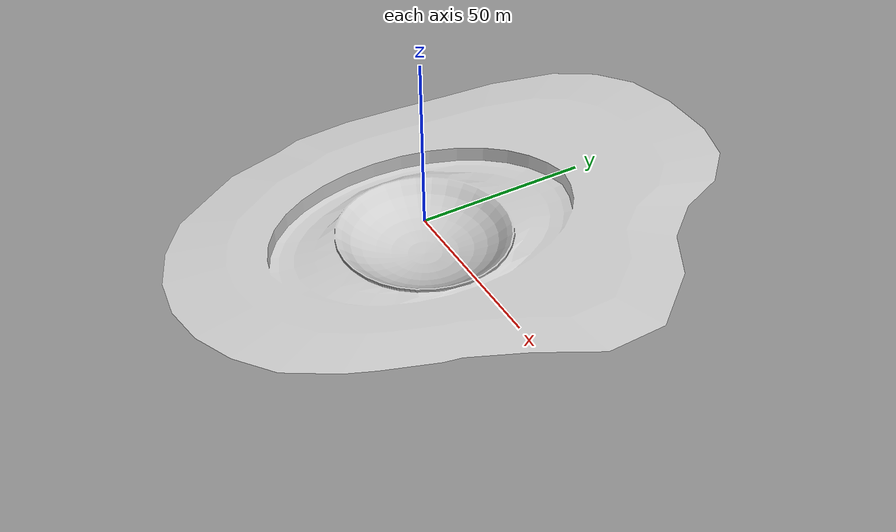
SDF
<?xml version="1.0" ?>
<sdf version="1.4">
  <model name="gate">
    <static>true</static>
    <link name="link">
      <pose>0 0 0 0 0 0</pose>
      <must_be_base_link>1</must_be_base_link>
      <collision name="collision">
        <geometry>
          <mesh>
            <uri>model://transdec/meshes/transdec.dae</uri>
          </mesh>
        </geometry>
      </collision>
      <visual name="visual">
        <cast_shadows>false</cast_shadows>
        <geometry>
          <mesh>
            <uri>model://transdec/meshes/transdec.dae</uri>
          </mesh>
        </geometry>
      </visual>
    </link>
  </model>
</sdf>
